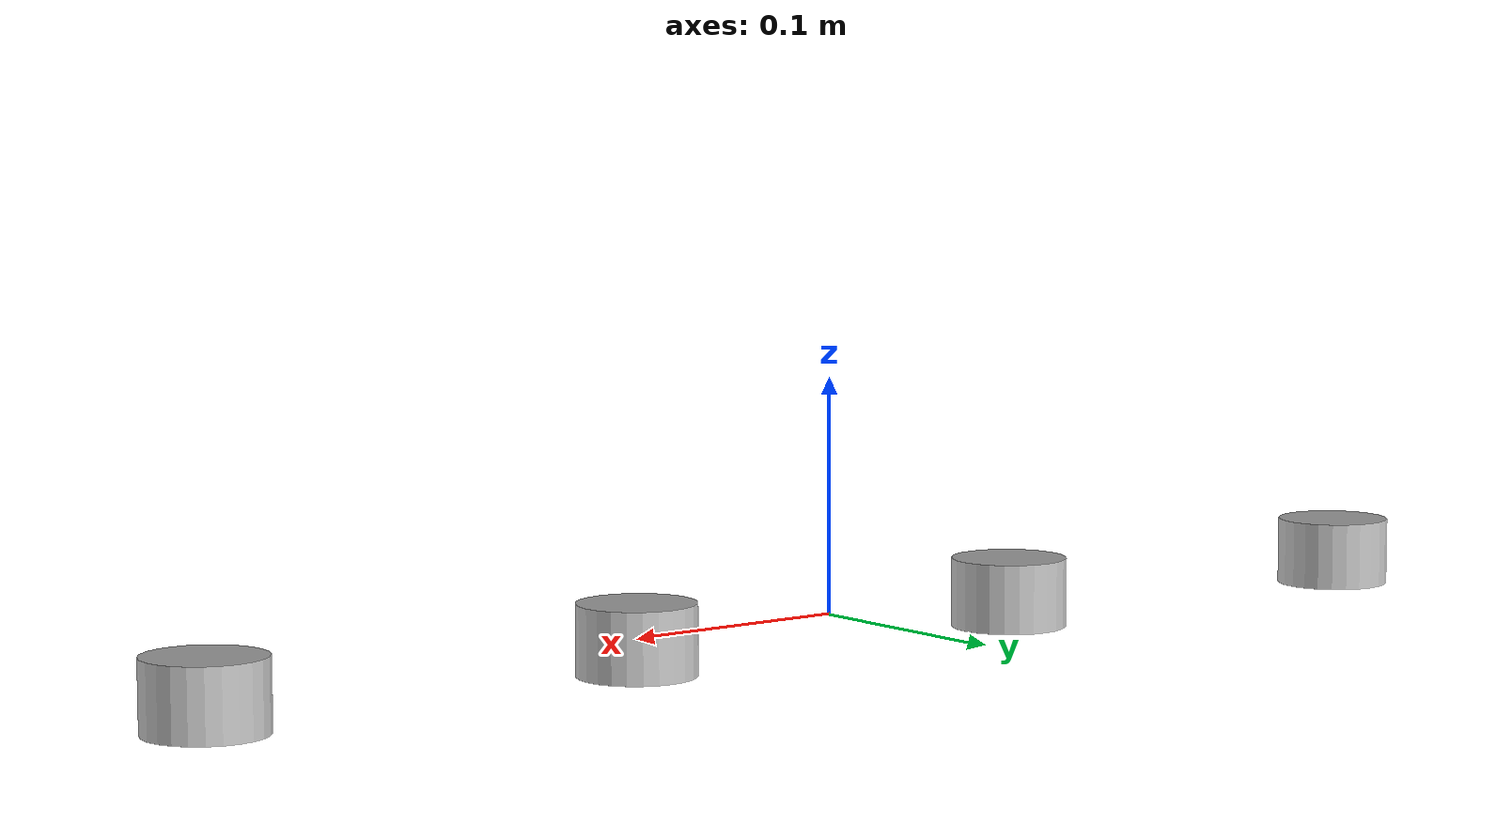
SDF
<?xml version='1.0'?>
<sdf version='1.6'>
		<model name="mainbase">
			<self_collide>true</self_collide>
			<pose>0.0 0.0 0.0 0.0 0.0 0.0</pose>
			<!-- Start of parts of the pmodel mainbase -->
				<!-- Start of declarations for part "mainbase::LBASE" -->
					<!-- Start of parts of part "mainbase::LBASE" -->
					<!-- Start of declarations for part "mainbase::LBASE::LWHEEL" -->
						<!-- Start of parts of part "mainbase::LBASE::LWHEEL" -->
						<!-- End of parts of part "mainbase::LBASE::LWHEEL" -->

						<!-- Start of links of part "mainbase::LBASE::LWHEEL" -->
						<!-- link full name is mainbase::LBASE::LWHEEL::wheel -->
						<link name="1-wheel">
								<pose>-0.30000000447034836 0.0 0.0 0.0 -0.0 0.0</pose>
								<inertial>
									<pose>0.0 0.0 0.0 0.0 0.0 0.0</pose>
									<inertia>
										<ixx>1.0</ixx>
										<ixy>0.0</ixy>
										<ixz>0.0</ixz>
										<iyy>1.0</iyy>
										<iyz>0.0</iyz>
										<izz>1.0</izz>
									</inertia>
									<mass>1.0</mass>
								</inertial>
								<!-- body full name is mainbase::LBASE::LWHEEL::wheel::bwheel -->
								<collision name="1--bwheel">
									<laser_retro>0.0</laser_retro>
									<pose>0.0 0.0 0.0 0.0 0.0 0.0</pose>
									<geometry>
										<cylinder>
											<radius>0.02500000037252903</radius>
											<length>0.029999999329447746</length>
										</cylinder>
									</geometry>
									<surface>
										<bounce>
											<restitution_coefficient>0.0</restitution_coefficient>
											<threshold>100000.0</threshold>
										</bounce>
										<friction>
											<ode>
												<mu>1.0</mu>
												<mu2>1.0</mu2>
												<fdir1>0.0 0.0 0.0</fdir1>
												<slip1>0.0</slip1>
												<slip2>0.0</slip2>
											</ode>
											<torsional>
												<coefficient>1.0</coefficient>
												<surface_radius>0.0</surface_radius>
											</torsional>
										</friction>
									</surface>
								</collision>
								<visual name="1--bwheel">
									<laser_retro>0.0</laser_retro>
									<pose>0.0 0.0 0.0 0.0 0.0 0.0</pose>
									<geometry>
										<cylinder>
											<radius>0.02500000037252903</radius>
											<length>0.029999999329447746</length>
										</cylinder>
									</geometry>
									<surface>
										<bounce>
											<restitution_coefficient>0.0</restitution_coefficient>
											<threshold>100000.0</threshold>
										</bounce>
										<friction>
											<ode>
												<mu>1.0</mu>
												<mu2>1.0</mu2>
												<fdir1>0.0 0.0 0.0</fdir1>
												<slip1>0.0</slip1>
												<slip2>0.0</slip2>
											</ode>
											<torsional>
												<coefficient>1.0</coefficient>
												<surface_radius>0.0</surface_radius>
											</torsional>
										</friction>
									</surface>
								</visual>
						</link>
						<!-- End of links of part "mainbase::LBASE::LWHEEL" -->

						<!-- Start of joints of part "mainbase::LBASE::LWHEEL" -->
						<!-- End of joints of part "mainbase::LBASE::LWHEEL" -->

						<!-- Start of fixed connections of part "mainbase::LBASE::LWHEEL" -->

						<!-- End of fixed connections of part "mainbase::LBASE::LWHEEL" -->
					<!-- End of declarations for part "mainbase::LBASE::LWHEEL" -->
					<!-- Start of declarations for part "mainbase::LBASE::RWHEEL" -->
						<!-- Start of parts of part "mainbase::LBASE::RWHEEL" -->
						<!-- End of parts of part "mainbase::LBASE::RWHEEL" -->

						<!-- Start of links of part "mainbase::LBASE::RWHEEL" -->
						<!-- link full name is mainbase::LBASE::RWHEEL::wheel -->
						<link name="2-wheel">
								<pose>-0.10000000149011612 0.0 0.0 0.0 -0.0 0.0</pose>
								<inertial>
									<pose>0.0 0.0 0.0 0.0 0.0 0.0</pose>
									<inertia>
										<ixx>1.0</ixx>
										<ixy>0.0</ixy>
										<ixz>0.0</ixz>
										<iyy>1.0</iyy>
										<iyz>0.0</iyz>
										<izz>1.0</izz>
									</inertia>
									<mass>1.0</mass>
								</inertial>
								<!-- body full name is mainbase::LBASE::RWHEEL::wheel::bwheel -->
								<collision name="2--bwheel">
									<laser_retro>0.0</laser_retro>
									<pose>0.0 0.0 0.0 0.0 0.0 0.0</pose>
									<geometry>
										<cylinder>
											<radius>0.02500000037252903</radius>
											<length>0.029999999329447746</length>
										</cylinder>
									</geometry>
									<surface>
										<bounce>
											<restitution_coefficient>0.0</restitution_coefficient>
											<threshold>100000.0</threshold>
										</bounce>
										<friction>
											<ode>
												<mu>1.0</mu>
												<mu2>1.0</mu2>
												<fdir1>0.0 0.0 0.0</fdir1>
												<slip1>0.0</slip1>
												<slip2>0.0</slip2>
											</ode>
											<torsional>
												<coefficient>1.0</coefficient>
												<surface_radius>0.0</surface_radius>
											</torsional>
										</friction>
									</surface>
								</collision>
								<visual name="2--bwheel">
									<laser_retro>0.0</laser_retro>
									<pose>0.0 0.0 0.0 0.0 0.0 0.0</pose>
									<geometry>
										<cylinder>
											<radius>0.02500000037252903</radius>
											<length>0.029999999329447746</length>
										</cylinder>
									</geometry>
									<surface>
										<bounce>
											<restitution_coefficient>0.0</restitution_coefficient>
											<threshold>100000.0</threshold>
										</bounce>
										<friction>
											<ode>
												<mu>1.0</mu>
												<mu2>1.0</mu2>
												<fdir1>0.0 0.0 0.0</fdir1>
												<slip1>0.0</slip1>
												<slip2>0.0</slip2>
											</ode>
											<torsional>
												<coefficient>1.0</coefficient>
												<surface_radius>0.0</surface_radius>
											</torsional>
										</friction>
									</surface>
								</visual>
						</link>
						<!-- End of links of part "mainbase::LBASE::RWHEEL" -->

						<!-- Start of joints of part "mainbase::LBASE::RWHEEL" -->
						<!-- End of joints of part "mainbase::LBASE::RWHEEL" -->

						<!-- Start of fixed connections of part "mainbase::LBASE::RWHEEL" -->

						<!-- End of fixed connections of part "mainbase::LBASE::RWHEEL" -->
					<!-- End of declarations for part "mainbase::LBASE::RWHEEL" -->
					<!-- End of parts of part "mainbase::LBASE" -->

					<!-- Start of links of part "mainbase::LBASE" -->
					<!-- link full name is mainbase::LBASE::Core -->
					<link name="3-Core">
							<pose>-0.20000000298023224 0.0 0.0 0.0 0.0 0.0</pose>
							<inertial>
								<pose>0.0 0.0 0.0 0.0 0.0 0.0</pose>
								<inertia>
									<ixx>1.0</ixx>
									<ixy>0.0</ixy>
									<ixz>0.0</ixz>
									<iyy>1.0</iyy>
									<iyz>0.0</iyz>
									<izz>1.0</izz>
								</inertia>
								<mass>1.0</mass>
							</inertial>
					</link>
					<!-- End of links of part "mainbase::LBASE" -->

					<!-- Start of joints of part "mainbase::LBASE" -->
					<!-- Full name of joint: mainbase::LBASE::Core::RJ from mainbase::LBASE::Core to mainbase::LBASE::RWHEEL::wheel-->
					<joint name="4-RJ" type="revolute">
						<pose>-0.10000000149011612 0.0 0.0 0.0 -0.0 0.0</pose>
						<parent>3-Core</parent>
						<child>2-wheel</child>
						<!-- WARNING: The SDF generator relies on annotations of the joint 4-RJ to specify in SDF aspects of the joint that are
							 accounted for in the equations. -->
					</joint>
					<!-- Full name of joint: mainbase::LBASE::Core::LJ from mainbase::LBASE::Core to mainbase::LBASE::LWHEEL::wheel-->
					<joint name="5-LJ" type="revolute">
						<pose>0.10000000149011612 0.0 0.0 0.0 -0.0 0.0</pose>
						<parent>3-Core</parent>
						<child>1-wheel</child>
						<!-- WARNING: The SDF generator relies on annotations of the joint 5-LJ to specify in SDF aspects of the joint that are
							 accounted for in the equations. -->
					</joint>
					<!-- End of joints of part "mainbase::LBASE" -->

					<!-- Start of fixed connections of part "mainbase::LBASE" -->

					<!-- fixed joint full name is mainbase::LBASE::Core::fixedJoint::mainbase::LBASE::LWHEEL::wheel from mainbase::LBASE::Core to mainbase::LBASE::LWHEEL::wheel -->
					<joint name="6-fixedJoint" type="fixed">
						<parent>3-Core</parent>
						<child>1-wheel</child>
						<axis><xyz>0 0 1</xyz></axis>
					</joint>
					<!-- fixed joint full name is mainbase::LBASE::Core::fixedJoint::mainbase::LBASE::RWHEEL::wheel from mainbase::LBASE::Core to mainbase::LBASE::RWHEEL::wheel -->
					<joint name="7-fixedJoint" type="fixed">
						<parent>3-Core</parent>
						<child>2-wheel</child>
						<axis><xyz>0 0 1</xyz></axis>
					</joint>
					<!-- End of fixed connections of part "mainbase::LBASE" -->
				<!-- End of declarations for part "mainbase::LBASE" -->
				<!-- Start of declarations for part "mainbase::RBASE" -->
					<!-- Start of parts of part "mainbase::RBASE" -->
					<!-- Start of declarations for part "mainbase::RBASE::LWHEEL" -->
						<!-- Start of parts of part "mainbase::RBASE::LWHEEL" -->
						<!-- End of parts of part "mainbase::RBASE::LWHEEL" -->

						<!-- Start of links of part "mainbase::RBASE::LWHEEL" -->
						<!-- link full name is mainbase::RBASE::LWHEEL::wheel -->
						<link name="8-wheel">
								<pose>0.10000000149011612 0.0 0.0 0.0 -0.0 0.0</pose>
								<inertial>
									<pose>0.0 0.0 0.0 0.0 0.0 0.0</pose>
									<inertia>
										<ixx>1.0</ixx>
										<ixy>0.0</ixy>
										<ixz>0.0</ixz>
										<iyy>1.0</iyy>
										<iyz>0.0</iyz>
										<izz>1.0</izz>
									</inertia>
									<mass>1.0</mass>
								</inertial>
								<!-- body full name is mainbase::RBASE::LWHEEL::wheel::bwheel -->
								<collision name="3--bwheel">
									<laser_retro>0.0</laser_retro>
									<pose>0.0 0.0 0.0 0.0 0.0 0.0</pose>
									<geometry>
										<cylinder>
											<radius>0.02500000037252903</radius>
											<length>0.029999999329447746</length>
										</cylinder>
									</geometry>
									<surface>
										<bounce>
											<restitution_coefficient>0.0</restitution_coefficient>
											<threshold>100000.0</threshold>
										</bounce>
										<friction>
											<ode>
												<mu>1.0</mu>
												<mu2>1.0</mu2>
												<fdir1>0.0 0.0 0.0</fdir1>
												<slip1>0.0</slip1>
												<slip2>0.0</slip2>
											</ode>
											<torsional>
												<coefficient>1.0</coefficient>
												<surface_radius>0.0</surface_radius>
											</torsional>
										</friction>
									</surface>
								</collision>
								<visual name="3--bwheel">
									<laser_retro>0.0</laser_retro>
									<pose>0.0 0.0 0.0 0.0 0.0 0.0</pose>
									<geometry>
										<cylinder>
											<radius>0.02500000037252903</radius>
											<length>0.029999999329447746</length>
										</cylinder>
									</geometry>
									<surface>
										<bounce>
											<restitution_coefficient>0.0</restitution_coefficient>
											<threshold>100000.0</threshold>
										</bounce>
										<friction>
											<ode>
												<mu>1.0</mu>
												<mu2>1.0</mu2>
												<fdir1>0.0 0.0 0.0</fdir1>
												<slip1>0.0</slip1>
												<slip2>0.0</slip2>
											</ode>
											<torsional>
												<coefficient>1.0</coefficient>
												<surface_radius>0.0</surface_radius>
											</torsional>
										</friction>
									</surface>
								</visual>
						</link>
						<!-- End of links of part "mainbase::RBASE::LWHEEL" -->

						<!-- Start of joints of part "mainbase::RBASE::LWHEEL" -->
						<!-- End of joints of part "mainbase::RBASE::LWHEEL" -->

						<!-- Start of fixed connections of part "mainbase::RBASE::LWHEEL" -->

						<!-- End of fixed connections of part "mainbase::RBASE::LWHEEL" -->
					<!-- End of declarations for part "mainbase::RBASE::LWHEEL" -->
					<!-- Start of declarations for part "mainbase::RBASE::RWHEEL" -->
						<!-- Start of parts of part "mainbase::RBASE::RWHEEL" -->
						<!-- End of parts of part "mainbase::RBASE::RWHEEL" -->

						<!-- Start of links of part "mainbase::RBASE::RWHEEL" -->
						<!-- link full name is mainbase::RBASE::RWHEEL::wheel -->
						<link name="9-wheel">
								<pose>0.30000000447034836 0.0 0.0 0.0 -0.0 0.0</pose>
								<inertial>
									<pose>0.0 0.0 0.0 0.0 0.0 0.0</pose>
									<inertia>
										<ixx>1.0</ixx>
										<ixy>0.0</ixy>
										<ixz>0.0</ixz>
										<iyy>1.0</iyy>
										<iyz>0.0</iyz>
										<izz>1.0</izz>
									</inertia>
									<mass>1.0</mass>
								</inertial>
								<!-- body full name is mainbase::RBASE::RWHEEL::wheel::bwheel -->
								<collision name="4--bwheel">
									<laser_retro>0.0</laser_retro>
									<pose>0.0 0.0 0.0 0.0 0.0 0.0</pose>
									<geometry>
										<cylinder>
											<radius>0.02500000037252903</radius>
											<length>0.029999999329447746</length>
										</cylinder>
									</geometry>
									<surface>
										<bounce>
											<restitution_coefficient>0.0</restitution_coefficient>
											<threshold>100000.0</threshold>
										</bounce>
										<friction>
											<ode>
												<mu>1.0</mu>
												<mu2>1.0</mu2>
												<fdir1>0.0 0.0 0.0</fdir1>
												<slip1>0.0</slip1>
												<slip2>0.0</slip2>
											</ode>
											<torsional>
												<coefficient>1.0</coefficient>
												<surface_radius>0.0</surface_radius>
											</torsional>
										</friction>
									</surface>
								</collision>
								<visual name="4--bwheel">
									<laser_retro>0.0</laser_retro>
									<pose>0.0 0.0 0.0 0.0 0.0 0.0</pose>
									<geometry>
										<cylinder>
											<radius>0.02500000037252903</radius>
											<length>0.029999999329447746</length>
										</cylinder>
									</geometry>
									<surface>
										<bounce>
											<restitution_coefficient>0.0</restitution_coefficient>
											<threshold>100000.0</threshold>
										</bounce>
										<friction>
											<ode>
												<mu>1.0</mu>
												<mu2>1.0</mu2>
												<fdir1>0.0 0.0 0.0</fdir1>
												<slip1>0.0</slip1>
												<slip2>0.0</slip2>
											</ode>
											<torsional>
												<coefficient>1.0</coefficient>
												<surface_radius>0.0</surface_radius>
											</torsional>
										</friction>
									</surface>
								</visual>
						</link>
						<!-- End of links of part "mainbase::RBASE::RWHEEL" -->

						<!-- Start of joints of part "mainbase::RBASE::RWHEEL" -->
						<!-- End of joints of part "mainbase::RBASE::RWHEEL" -->

						<!-- Start of fixed connections of part "mainbase::RBASE::RWHEEL" -->

						<!-- End of fixed connections of part "mainbase::RBASE::RWHEEL" -->
					<!-- End of declarations for part "mainbase::RBASE::RWHEEL" -->
					<!-- End of parts of part "mainbase::RBASE" -->

					<!-- Start of links of part "mainbase::RBASE" -->
					<!-- link full name is mainbase::RBASE::Core -->
					<link name="10-Core">
							<pose>0.20000000298023224 0.0 0.0 0.0 0.0 0.0</pose>
							<inertial>
								<pose>0.0 0.0 0.0 0.0 0.0 0.0</pose>
								<inertia>
									<ixx>1.0</ixx>
									<ixy>0.0</ixy>
									<ixz>0.0</ixz>
									<iyy>1.0</iyy>
									<iyz>0.0</iyz>
									<izz>1.0</izz>
								</inertia>
								<mass>1.0</mass>
							</inertial>
					</link>
					<!-- End of links of part "mainbase::RBASE" -->

					<!-- Start of joints of part "mainbase::RBASE" -->
					<!-- Full name of joint: mainbase::RBASE::Core::RJ from mainbase::RBASE::Core to mainbase::RBASE::RWHEEL::wheel-->
					<joint name="11-RJ" type="revolute">
						<pose>-0.10000000149011612 0.0 0.0 0.0 -0.0 0.0</pose>
						<parent>10-Core</parent>
						<child>9-wheel</child>
						<!-- WARNING: The SDF generator relies on annotations of the joint 11-RJ to specify in SDF aspects of the joint that are
							 accounted for in the equations. -->
					</joint>
					<!-- Full name of joint: mainbase::RBASE::Core::LJ from mainbase::RBASE::Core to mainbase::RBASE::LWHEEL::wheel-->
					<joint name="12-LJ" type="revolute">
						<pose>0.10000000149011612 0.0 0.0 0.0 -0.0 0.0</pose>
						<parent>10-Core</parent>
						<child>8-wheel</child>
						<!-- WARNING: The SDF generator relies on annotations of the joint 12-LJ to specify in SDF aspects of the joint that are
							 accounted for in the equations. -->
					</joint>
					<!-- End of joints of part "mainbase::RBASE" -->

					<!-- Start of fixed connections of part "mainbase::RBASE" -->

					<!-- fixed joint full name is mainbase::RBASE::Core::fixedJoint::mainbase::RBASE::LWHEEL::wheel from mainbase::RBASE::Core to mainbase::RBASE::LWHEEL::wheel -->
					<joint name="13-fixedJoint" type="fixed">
						<parent>10-Core</parent>
						<child>8-wheel</child>
						<axis><xyz>0 0 1</xyz></axis>
					</joint>
					<!-- fixed joint full name is mainbase::RBASE::Core::fixedJoint::mainbase::RBASE::RWHEEL::wheel from mainbase::RBASE::Core to mainbase::RBASE::RWHEEL::wheel -->
					<joint name="14-fixedJoint" type="fixed">
						<parent>10-Core</parent>
						<child>9-wheel</child>
						<axis><xyz>0 0 1</xyz></axis>
					</joint>
					<!-- End of fixed connections of part "mainbase::RBASE" -->
				<!-- End of declarations for part "mainbase::RBASE" -->
			<!-- End of parts of the pmodel mainbase -->

			<!-- Start of links of the pmodel mainbase -->
			<!-- End of links of the pmodel mainbase -->

			<!-- Start of joints of the pmodel mainbase -->
			<!-- End of joints of the pmodel mainbase -->

			<!-- Start of fixed connections of the pmodel mainbase -->
			<!-- End of fixed connections of the pmodel mainbase -->
		</model>
</sdf>
